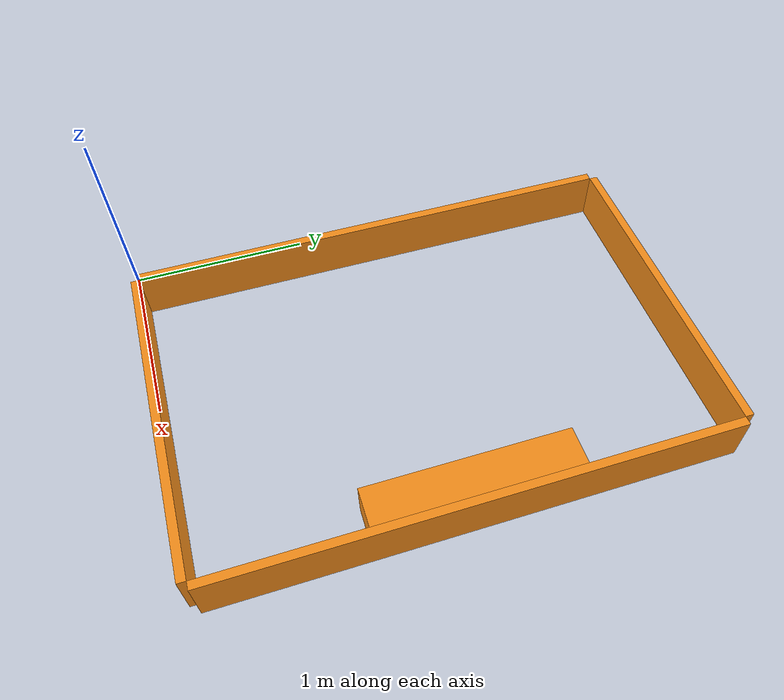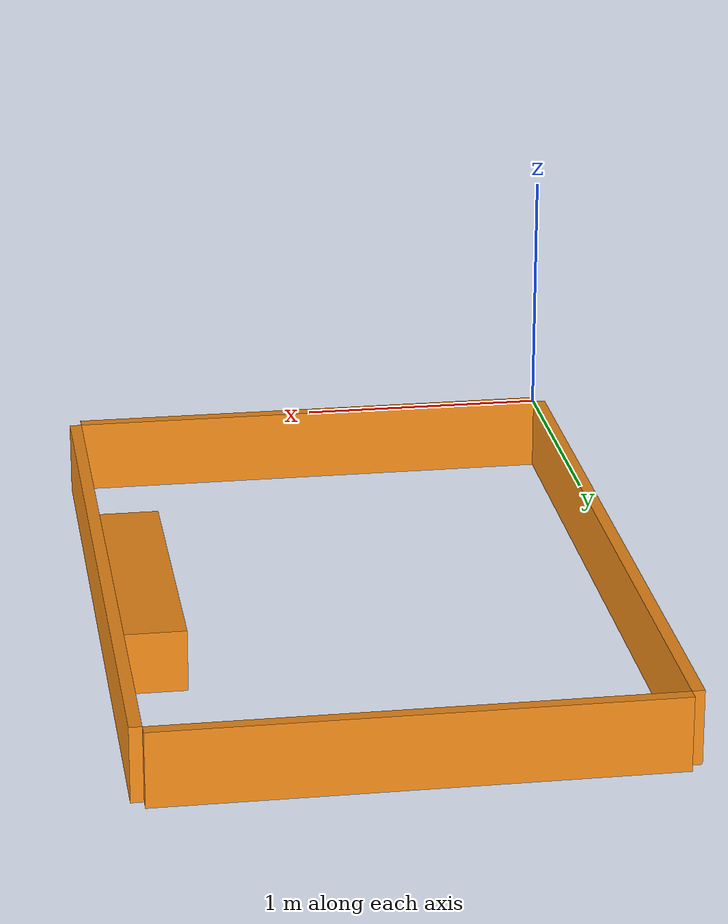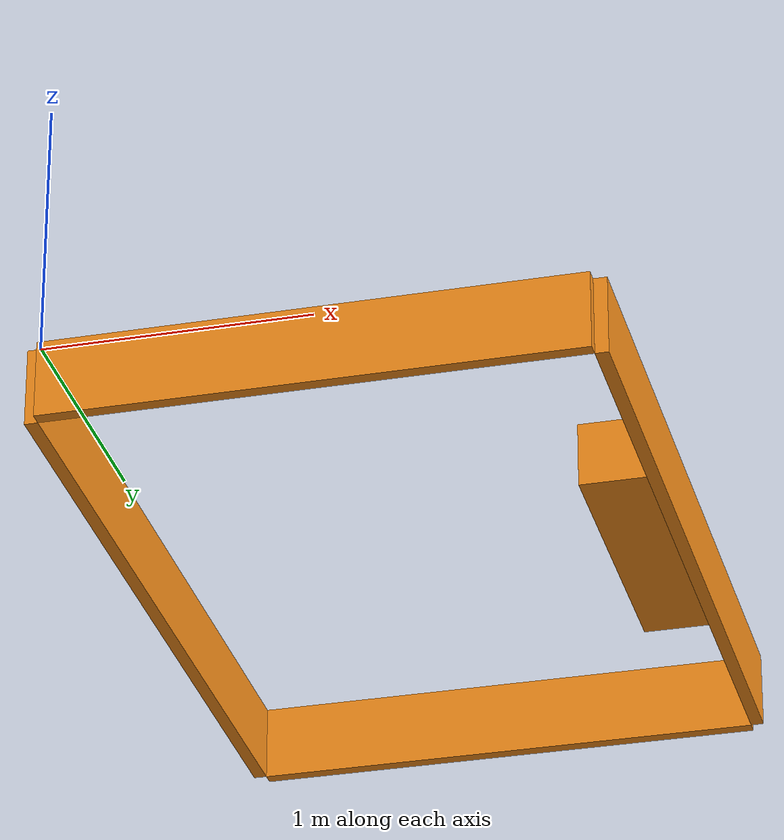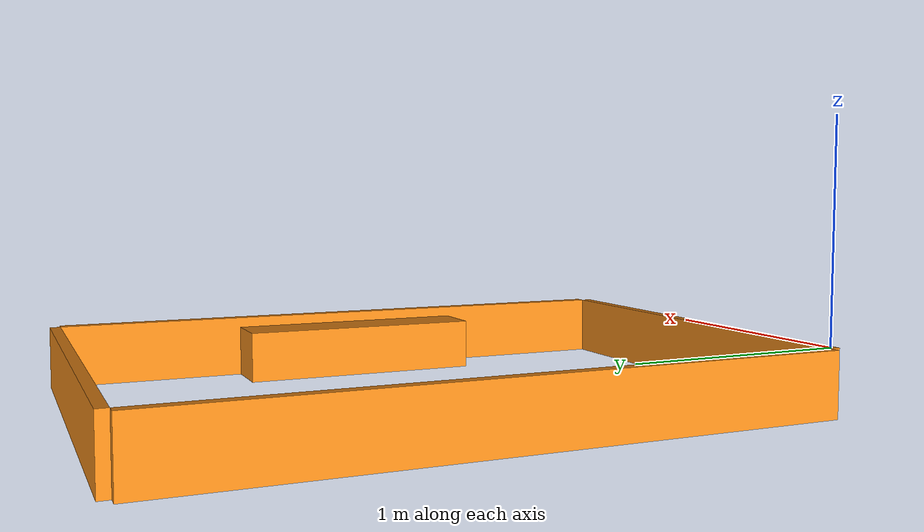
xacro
<?xml version="1.0"?>

<robot name="table" xmlns:xacro="http://www.ros.org/wiki/xacro">
  <xacro:include filename="$(find robot_description)/urdf/materials.xacro"/>
  <xacro:include filename="$(find robot_description)/urdf/macros.xacro"/>

  <!-- *** EXTERNAL WALLS *** -->
  <xacro:property name="wallThickness" value="0.05"/>
  <xacro:property name="wallHeight" value="0.3"/>
  <xacro:property name="verticalWallLength" value="3.0"/>
  <xacro:property name="horizontalWallLength" value="2.0"/>
  <xacro:property name="wallMass" value="1000.0"/>

  <!-- Left wall -->
  <link name="leftWall">
    <collision>
      <origin xyz="${-wallThickness/2} ${verticalWallLength/2} ${-wallHeight/2}" rpy="0 0 0"/>
      <geometry>
        <box size="${wallThickness} ${verticalWallLength} ${wallHeight}"/>
      </geometry>
    </collision>

    <visual>
      <origin xyz="${-wallThickness/2} ${verticalWallLength/2} ${-wallHeight/2}" rpy="0 0 0"/>
      <geometry>
        <box size="${wallThickness} ${verticalWallLength} ${wallHeight}"/>
      </geometry>
      <material name="orange"/>
    </visual>

    <inertial>
      <origin xyz="${-wallThickness/2} ${verticalWallLength/2} ${-wallHeight/2}" rpy="0 0 0"/>
      <mass value="${wallMass}"/>
      <box_inertia m="${wallMass}" x="${wallThickness}" y="${verticalWallLength}" z="${wallHeight}"/>
    </inertial>
  </link>

  <!-- Right wall -->
  <link name="rightWall">
    <collision>
      <origin xyz="${wallThickness/2} ${verticalWallLength/2} ${-wallHeight/2}" rpy="0 0 0"/>
      <geometry>
        <box size="${wallThickness} ${verticalWallLength} ${wallHeight}"/>
      </geometry>
    </collision>

    <visual>
      <origin xyz="${wallThickness/2} ${verticalWallLength/2} ${-wallHeight/2}" rpy="0 0 0"/>
      <geometry>
        <box size="${wallThickness} ${verticalWallLength} ${wallHeight}"/>
      </geometry>
      <material name="orange"/>
    </visual>

    <inertial>
      <origin xyz="${wallThickness/2 + horizontalWallLength} ${verticalWallLength/2} ${-wallHeight/2}" rpy="0 0 0"/>
      <mass value="${wallMass}"/>
      <box_inertia m="${wallMass}" x="${wallThickness}" y="${horizontalWallLength}" z="${wallHeight}"/>
    </inertial>
  </link>

  <joint name="left_to_Right" type="fixed">
    <parent link="leftWall"/>
    <child link="rightWall"/>
    <origin xyz="${horizontalWallLength} 0 0" rpy="0 0 0"/>
  </joint>

  <!-- Bottom wall -->
  <link name="bottomWall">
    <collision>
      <origin xyz="${horizontalWallLength/2} ${-wallThickness/2} ${-wallHeight/2}" rpy="0 0 0"/>
      <geometry>
        <box size="${horizontalWallLength} ${wallThickness} ${wallHeight}"/>
      </geometry>
    </collision>

    <visual>
      <origin xyz="${horizontalWallLength/2} ${-wallThickness/2} ${-wallHeight/2}" rpy="0 0 0"/>
      <geometry>
        <box size="${horizontalWallLength} ${wallThickness} ${wallHeight}"/>
      </geometry>
      <material name="orange"/>
    </visual>

    <inertial>
      <origin xyz="${horizontalWallLength/2} ${-wallThickness/2} ${-wallHeight/2}" rpy="0 0 0"/>
      <mass value="${wallMass}"/>
      <box_inertia m="${wallMass}" x="${horizontalWallLength}" y="${wallThickness}" z="${wallHeight}"/>
    </inertial>
  </link>

  <joint name="left_to_Bottom" type="fixed">
    <parent link="leftWall"/>
    <child link="bottomWall"/>
  </joint>

  <!-- Top wall -->
  <link name="topWall">
    <collision>
      <origin xyz="${horizontalWallLength/2} ${wallThickness/2} ${-wallHeight/2}" rpy="0 0 0"/>
      <geometry>
        <box size="${horizontalWallLength} ${wallThickness} ${wallHeight}"/>
      </geometry>
    </collision>

    <visual>
      <origin xyz="${horizontalWallLength/2} ${wallThickness/2} ${-wallHeight/2}" rpy="0 0 0"/>
      <geometry>
        <box size="${horizontalWallLength} ${wallThickness} ${wallHeight}"/>
      </geometry>
      <material name="orange"/>
    </visual>

    <inertial>
      <origin xyz="${horizontalWallLength/2} ${wallThickness/2} ${-wallHeight/2}" rpy="0 0 0"/>
      <mass value="${wallMass}"/>
      <box_inertia m="${wallMass}" x="${horizontalWallLength}" y="${wallThickness}" z="${wallHeight}"/>
    </inertial>
  </link>

  <joint name="left_to_Top" type="fixed">
    <parent link="leftWall"/>
    <child link="topWall"/>
    <origin xyz="0 ${verticalWallLength} 0" rpy="0 0 0"/>
  </joint>

  <!-- *** WASTEWATER TREATMENT PLANT *** -->
  <xacro:property name="plantWidth" value="0.25"/>
  <xacro:property name="plantLength" value="1.2"/>
  <xacro:property name="plantHeight" value="0.25"/>
  <xacro:property name="plantMass" value="1000"/>

  <link name="wasteWaterTreatmentPlant">
    <collision>
      <origin xyz="${plantWidth/2} ${plantLength/2} ${-plantHeight/2}" rpy="0 0 0"/>
      <geometry>
        <box size="${plantWidth} ${plantLength} ${plantHeight}"/>
      </geometry>
    </collision>

    <visual>
      <origin xyz="${plantWidth/2} ${plantLength/2} ${-plantHeight/2}" rpy="0 0 0"/>
      <geometry>
        <box size="${plantWidth} ${plantLength} ${plantHeight}"/>
      </geometry>
      <material name="orange"/>
    </visual>

    <inertial>
      <origin xyz="${plantWidth/2} ${plantLength/2} ${-plantHeight/2}" rpy="0 0 0"/>
      <mass value="${wallMass}"/>
      <box_inertia m="${plantMass}" x="${plantWidth}" y="${plantLength}" z="${plantHeight}"/>
    </inertial>
  </link>

  <joint name="rightWall_to_wasteWaterTreatmentPlant" type="fixed">
    <parent link="rightWall"/>
    <child link="wasteWaterTreatmentPlant"/>
    <origin xyz="${-plantWidth} ${verticalWallLength/2 - plantLength/2} ${plantHeight-wallHeight}" rpy="0 0 0"/>
  </joint>

</robot>

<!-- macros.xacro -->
<robot>
  <macro name="cylinder_inertia" params="m r h">
    <inertia ixx="${m*(3*r*r+h*h)/12}" ixy = "0" ixz = "0"
             iyy="${m*(3*r*r+h*h)/12}" iyz = "0"
             izz="${m*r*r/2}" />
  </macro>

  <macro name="box_inertia" params="m x y z">
    <inertia ixx="${m*(y*y+z*z)/12}" ixy = "0" ixz = "0"
             iyy="${m*(x*x+z*z)/12}" iyz = "0"
             izz="${m*(x*x+z*z)/12}" />
  </macro>

  <macro name="sphere_inertia" params="m r">
    <inertia ixx="${2*m*r*r/5}" ixy = "0" ixz = "0"
             iyy="${2*m*r*r/5}" iyz = "0"
             izz="${2*m*r*r/5}" />
  </macro>

  <macro name="wheel" params="lr tY">
    <link name="${lr}_wheel">
      <collision>
        <origin xyz="0 0 0" rpy="0 ${PI/2} ${PI/2}" />
        <geometry>
        <cylinder length="${wheelWidth}" radius="${wheelRadius}"/>
        </geometry>
      </collision>

      <visual>
        <origin xyz="0 0 0" rpy="0 ${PI/2} ${PI/2}" />
        <geometry>
        <cylinder length="${wheelWidth}" radius="${wheelRadius}"/>
        </geometry>
        <material name="black"/>
      </visual>

      <inertial>
        <origin xyz="0 0 0" rpy="0 ${PI/2} ${PI/2}" />
        <mass value="${wheelMass}"/>
        <cylinder_inertia m="${wheelMass}" r="${wheelRadius}" h="${wheelWidth}"/>
      </inertial>
    </link>

    <gazebo reference="${lr}_wheel">
      <mu1 value="1.0"/>
      <mu2 value="1.0"/>
      <kp value="10000000.0" />
      <kd value="1.0" />
      <fdir1 value="1 0 0"/>
      <material>Gazebo/Black</material>
    </gazebo>

    <joint name="${lr}_wheel_hinge" type="continuous">
      <parent link="chassis"/>
      <child link="${lr}_wheel"/>
      <origin xyz="${-wheelPos} ${tY*wheelWidth/2+tY*chassisWidth/2} ${wheelRadius}" rpy="0 0 0" />
      <axis xyz="0 1 0" rpy="0 0 0" />
      <limit effort="100" velocity="100"/>
      <joint_properties damping="0.0" friction="0.0"/>
    </joint>

    <transmission name="${lr}_trans">
      <type>transmission_interface/SimpleTransmission</type>
      <joint name="${lr}_wheel_hinge"/>
      <actuator name="${lr}Motor">
        <hardwareInterface>EffortJointInterface</hardwareInterface>
        <mechanicalReduction>10</mechanicalReduction>
      </actuator>
    </transmission>

  </macro>
</robot>
